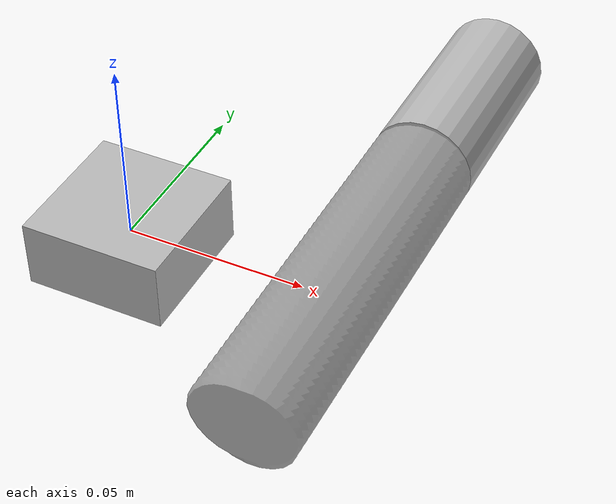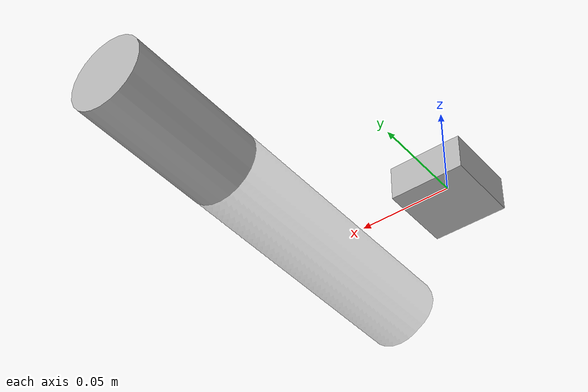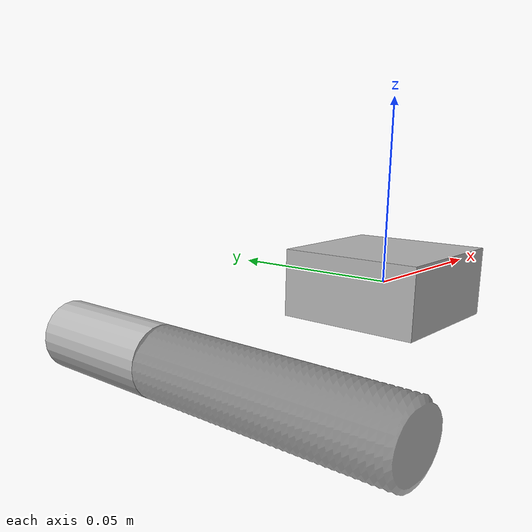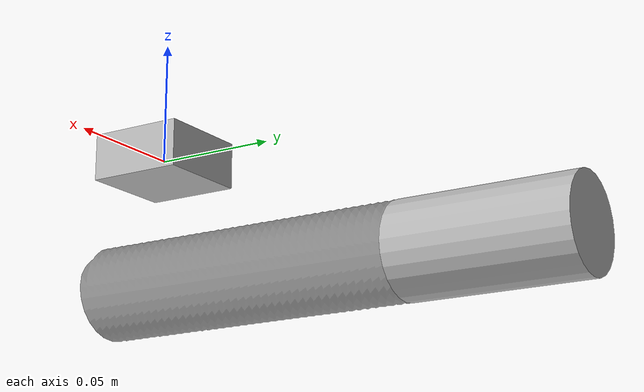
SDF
<?xml version='1.0'?>
<sdf version='1.7'>
  <model name='nut_and_bolt'>
    <link name='bolt'>
      <pose>0.0 0.0 0.0 0.0 0.0 0.0</pose>
      <visual name='bolt_vis'>
        <pose>0 0 0 0 0 0</pose>
        <geometry>
          <mesh>
            <uri>./bolt.obj</uri>
            <scale>0.07 0.07 0.07</scale>
          </mesh>
        </geometry>
      </visual>
    </link>
    <link name='nut'>
      <pose>0.0 0.0 0.0 0.0 0.0 0.0</pose>
      <visual name='nut_vis'>
        <pose>0.0 0.0 0.0 0.0 0.0 0.0</pose>
        <geometry>
          <box>
            <size>0.039 0.039 0.019</size>
          </box>
        </geometry>
      </visual>
      <collision name='box_collision'>
        <pose>0 0 0 0 0 0</pose>
        <geometry>
          <box>
            <size>0.039 0.039 0.019</size>
          </box>
        </geometry>
      </collision>
      <collision name="point_collision1">
        <pose>0.02 0.02 0.02 0 0 0</pose>
        <geometry>
          <sphere>
            <radius>1e-7</radius>
          </sphere>
        </geometry>
      </collision>
      <collision name="point_collision2">
        <pose>0.02 -0.02 0.02 0 0 0</pose>
        <geometry>
          <sphere>
            <radius>1e-7</radius>
          </sphere>
        </geometry>
      </collision>
      <collision name="point_collision3">
        <pose>-0.02 0.02 0.02 0 0 0</pose>
        <geometry>
          <sphere>
            <radius>1e-7</radius>
          </sphere>
        </geometry>
      </collision>
      <collision name="point_collision4">
        <pose>-0.02 -0.02 0.02 0 0 0</pose>
        <geometry>
          <sphere>
            <radius>1e-7</radius>
          </sphere>
        </geometry>
      </collision>
      <collision name="point_collision5">
        <pose>0.02 0.02 0.00 0 0 0</pose>
        <geometry>
          <sphere>
            <radius>1e-7</radius>
          </sphere>
        </geometry>
      </collision>
      <collision name="point_collision6">
        <pose>0.02 -0.02 0.00 0 0 0</pose>
        <geometry>
          <sphere>
            <radius>1e-7</radius>
          </sphere>
        </geometry>
      </collision>
      <collision name="point_collision7">
        <pose>-0.02 0.02 0.00 0 0 0</pose>
        <geometry>
          <sphere>
            <radius>1e-7</radius>
          </sphere>
        </geometry>
      </collision>
      <collision name="point_collision8">
        <pose>-0.02 -0.02 0.00 0 0 0</pose>
        <geometry>
          <sphere>
            <radius>1e-7</radius>
          </sphere>
        </geometry>
      </collision>
      <inertial>
        <pose>0 0 0 0 0 0</pose>
        <mass>0.02</mass>
        <inertia>
          <ixx>1</ixx>
          <ixy>0</ixy>
          <ixz>0</ixz>
          <iyy>1</iyy>
          <iyz>0</iyz>
          <izz>1</izz>
        </inertia>
      </inertial>
    </link>
    <joint name='nut_to_bolt_link' type='screw'>
      <parent>bolt</parent>
      <child>nut</child>
      <screw_thread_pitch>0.03</screw_thread_pitch>
      <pose>0 0 0.03 0 0 0</pose>
      <axis>
        <xyz>0 0 1</xyz>
        <dynamics>
          <damping>0.3</damping>
        </dynamics>
      </axis>
    </joint>
  </model>
</sdf>
